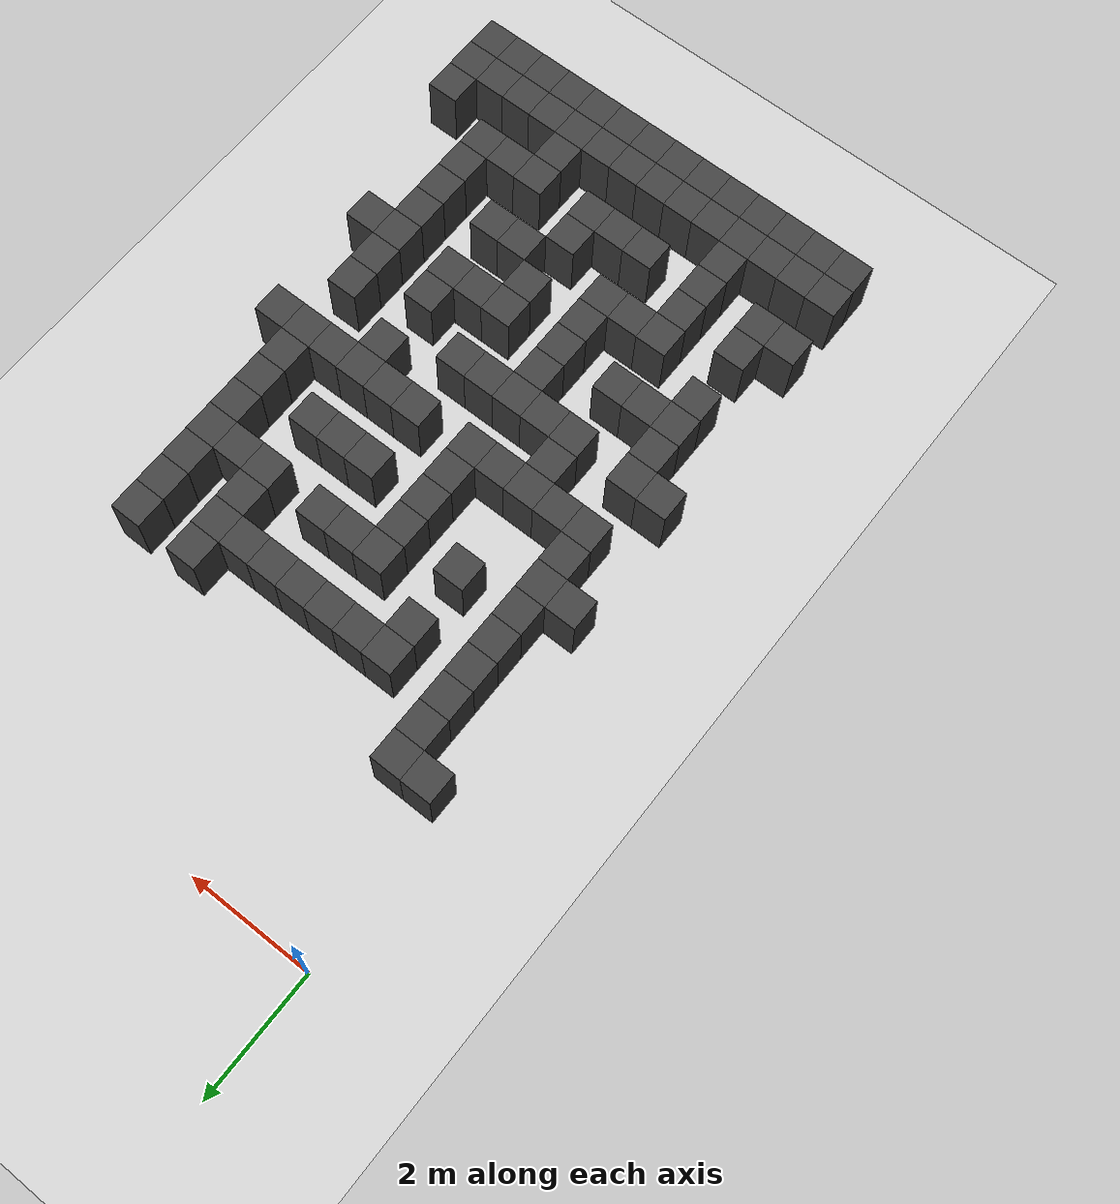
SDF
<sdf version="1.7">
 <world name="map_17508">
  <model name="ground_plane">
   <static>true</static>
   <link name="link">
    <collision name="collision">
     <geometry><plane><normal>0 0 1</normal><size>200 200</size></plane></geometry>
    </collision>
    <visual name="visual">
     <geometry><plane><normal>0 0 1</normal><size>200 200</size></plane></geometry>
     <material><ambient>0.8 0.8 0.8 1</ambient><diffuse>0.8 0.8 0.8 1</diffuse></material>
    </visual>
   </link>
  </model>
  <model name="maze_environment">
   <static>true</static>
   <link name="wall_756">
    <pose>0.250 -2.750 0.500 0 0 0</pose>
    <collision name="col"><geometry><box><size>0.5 0.5 1.0</size></box></geometry></collision>
    <visual name="vis">
     <geometry><box><size>0.5 0.5 1.0</size></box></geometry>
     <material><ambient>0.15 0.15 0.15 1</ambient><diffuse>0.25 0.25 0.25 1</diffuse></material>
    </visual>
   </link>
   <link name="wall_757">
    <pose>0.750 -2.750 0.500 0 0 0</pose>
    <collision name="col"><geometry><box><size>0.5 0.5 1.0</size></box></geometry></collision>
    <visual name="vis">
     <geometry><box><size>0.5 0.5 1.0</size></box></geometry>
     <material><ambient>0.15 0.15 0.15 1</ambient><diffuse>0.25 0.25 0.25 1</diffuse></material>
    </visual>
   </link>
   <link name="wall_778">
    <pose>0.750 -3.250 0.500 0 0 0</pose>
    <collision name="col"><geometry><box><size>0.5 0.5 1.0</size></box></geometry></collision>
    <visual name="vis">
     <geometry><box><size>0.5 0.5 1.0</size></box></geometry>
     <material><ambient>0.15 0.15 0.15 1</ambient><diffuse>0.25 0.25 0.25 1</diffuse></material>
    </visual>
   </link>
   <link name="wall_779">
    <pose>4.750 -3.250 0.500 0 0 0</pose>
    <collision name="col"><geometry><box><size>0.5 0.5 1.0</size></box></geometry></collision>
    <visual name="vis">
     <geometry><box><size>0.5 0.5 1.0</size></box></geometry>
     <material><ambient>0.15 0.15 0.15 1</ambient><diffuse>0.25 0.25 0.25 1</diffuse></material>
    </visual>
   </link>
   <link name="wall_780">
    <pose>5.750 -3.250 0.500 0 0 0</pose>
    <collision name="col"><geometry><box><size>0.5 0.5 1.0</size></box></geometry></collision>
    <visual name="vis">
     <geometry><box><size>0.5 0.5 1.0</size></box></geometry>
     <material><ambient>0.15 0.15 0.15 1</ambient><diffuse>0.25 0.25 0.25 1</diffuse></material>
    </visual>
   </link>
   <link name="wall_800">
    <pose>0.750 -3.750 0.500 0 0 0</pose>
    <collision name="col"><geometry><box><size>0.5 0.5 1.0</size></box></geometry></collision>
    <visual name="vis">
     <geometry><box><size>0.5 0.5 1.0</size></box></geometry>
     <material><ambient>0.15 0.15 0.15 1</ambient><diffuse>0.25 0.25 0.25 1</diffuse></material>
    </visual>
   </link>
   <link name="wall_801">
    <pose>1.750 -3.750 0.500 0 0 0</pose>
    <collision name="col"><geometry><box><size>0.5 0.5 1.0</size></box></geometry></collision>
    <visual name="vis">
     <geometry><box><size>0.5 0.5 1.0</size></box></geometry>
     <material><ambient>0.15 0.15 0.15 1</ambient><diffuse>0.25 0.25 0.25 1</diffuse></material>
    </visual>
   </link>
   <link name="wall_802">
    <pose>2.250 -3.750 0.500 0 0 0</pose>
    <collision name="col"><geometry><box><size>0.5 0.5 1.0</size></box></geometry></collision>
    <visual name="vis">
     <geometry><box><size>0.5 0.5 1.0</size></box></geometry>
     <material><ambient>0.15 0.15 0.15 1</ambient><diffuse>0.25 0.25 0.25 1</diffuse></material>
    </visual>
   </link>
   <link name="wall_803">
    <pose>2.750 -3.750 0.500 0 0 0</pose>
    <collision name="col"><geometry><box><size>0.5 0.5 1.0</size></box></geometry></collision>
    <visual name="vis">
     <geometry><box><size>0.5 0.5 1.0</size></box></geometry>
     <material><ambient>0.15 0.15 0.15 1</ambient><diffuse>0.25 0.25 0.25 1</diffuse></material>
    </visual>
   </link>
   <link name="wall_804">
    <pose>3.250 -3.750 0.500 0 0 0</pose>
    <collision name="col"><geometry><box><size>0.5 0.5 1.0</size></box></geometry></collision>
    <visual name="vis">
     <geometry><box><size>0.5 0.5 1.0</size></box></geometry>
     <material><ambient>0.15 0.15 0.15 1</ambient><diffuse>0.25 0.25 0.25 1</diffuse></material>
    </visual>
   </link>
   <link name="wall_805">
    <pose>3.750 -3.750 0.500 0 0 0</pose>
    <collision name="col"><geometry><box><size>0.5 0.5 1.0</size></box></geometry></collision>
    <visual name="vis">
     <geometry><box><size>0.5 0.5 1.0</size></box></geometry>
     <material><ambient>0.15 0.15 0.15 1</ambient><diffuse>0.25 0.25 0.25 1</diffuse></material>
    </visual>
   </link>
   <link name="wall_806">
    <pose>4.250 -3.750 0.500 0 0 0</pose>
    <collision name="col"><geometry><box><size>0.5 0.5 1.0</size></box></geometry></collision>
    <visual name="vis">
     <geometry><box><size>0.5 0.5 1.0</size></box></geometry>
     <material><ambient>0.15 0.15 0.15 1</ambient><diffuse>0.25 0.25 0.25 1</diffuse></material>
    </visual>
   </link>
   <link name="wall_807">
    <pose>4.750 -3.750 0.500 0 0 0</pose>
    <collision name="col"><geometry><box><size>0.5 0.5 1.0</size></box></geometry></collision>
    <visual name="vis">
     <geometry><box><size>0.5 0.5 1.0</size></box></geometry>
     <material><ambient>0.15 0.15 0.15 1</ambient><diffuse>0.25 0.25 0.25 1</diffuse></material>
    </visual>
   </link>
   <link name="wall_808">
    <pose>5.750 -3.750 0.500 0 0 0</pose>
    <collision name="col"><geometry><box><size>0.5 0.5 1.0</size></box></geometry></collision>
    <visual name="vis">
     <geometry><box><size>0.5 0.5 1.0</size></box></geometry>
     <material><ambient>0.15 0.15 0.15 1</ambient><diffuse>0.25 0.25 0.25 1</diffuse></material>
    </visual>
   </link>
   <link name="wall_824">
    <pose>0.750 -4.250 0.500 0 0 0</pose>
    <collision name="col"><geometry><box><size>0.5 0.5 1.0</size></box></geometry></collision>
    <visual name="vis">
     <geometry><box><size>0.5 0.5 1.0</size></box></geometry>
     <material><ambient>0.15 0.15 0.15 1</ambient><diffuse>0.25 0.25 0.25 1</diffuse></material>
    </visual>
   </link>
   <link name="wall_825">
    <pose>1.750 -4.250 0.500 0 0 0</pose>
    <collision name="col"><geometry><box><size>0.5 0.5 1.0</size></box></geometry></collision>
    <visual name="vis">
     <geometry><box><size>0.5 0.5 1.0</size></box></geometry>
     <material><ambient>0.15 0.15 0.15 1</ambient><diffuse>0.25 0.25 0.25 1</diffuse></material>
    </visual>
   </link>
   <link name="wall_826">
    <pose>4.750 -4.250 0.500 0 0 0</pose>
    <collision name="col"><geometry><box><size>0.5 0.5 1.0</size></box></geometry></collision>
    <visual name="vis">
     <geometry><box><size>0.5 0.5 1.0</size></box></geometry>
     <material><ambient>0.15 0.15 0.15 1</ambient><diffuse>0.25 0.25 0.25 1</diffuse></material>
    </visual>
   </link>
   <link name="wall_827">
    <pose>5.750 -4.250 0.500 0 0 0</pose>
    <collision name="col"><geometry><box><size>0.5 0.5 1.0</size></box></geometry></collision>
    <visual name="vis">
     <geometry><box><size>0.5 0.5 1.0</size></box></geometry>
     <material><ambient>0.15 0.15 0.15 1</ambient><diffuse>0.25 0.25 0.25 1</diffuse></material>
    </visual>
   </link>
   <link name="wall_853">
    <pose>0.750 -4.750 0.500 0 0 0</pose>
    <collision name="col"><geometry><box><size>0.5 0.5 1.0</size></box></geometry></collision>
    <visual name="vis">
     <geometry><box><size>0.5 0.5 1.0</size></box></geometry>
     <material><ambient>0.15 0.15 0.15 1</ambient><diffuse>0.25 0.25 0.25 1</diffuse></material>
    </visual>
   </link>
   <link name="wall_854">
    <pose>2.750 -4.750 0.500 0 0 0</pose>
    <collision name="col"><geometry><box><size>0.5 0.5 1.0</size></box></geometry></collision>
    <visual name="vis">
     <geometry><box><size>0.5 0.5 1.0</size></box></geometry>
     <material><ambient>0.15 0.15 0.15 1</ambient><diffuse>0.25 0.25 0.25 1</diffuse></material>
    </visual>
   </link>
   <link name="wall_855">
    <pose>3.250 -4.750 0.500 0 0 0</pose>
    <collision name="col"><geometry><box><size>0.5 0.5 1.0</size></box></geometry></collision>
    <visual name="vis">
     <geometry><box><size>0.5 0.5 1.0</size></box></geometry>
     <material><ambient>0.15 0.15 0.15 1</ambient><diffuse>0.25 0.25 0.25 1</diffuse></material>
    </visual>
   </link>
   <link name="wall_856">
    <pose>3.750 -4.750 0.500 0 0 0</pose>
    <collision name="col"><geometry><box><size>0.5 0.5 1.0</size></box></geometry></collision>
    <visual name="vis">
     <geometry><box><size>0.5 0.5 1.0</size></box></geometry>
     <material><ambient>0.15 0.15 0.15 1</ambient><diffuse>0.25 0.25 0.25 1</diffuse></material>
    </visual>
   </link>
   <link name="wall_857">
    <pose>4.750 -4.750 0.500 0 0 0</pose>
    <collision name="col"><geometry><box><size>0.5 0.5 1.0</size></box></geometry></collision>
    <visual name="vis">
     <geometry><box><size>0.5 0.5 1.0</size></box></geometry>
     <material><ambient>0.15 0.15 0.15 1</ambient><diffuse>0.25 0.25 0.25 1</diffuse></material>
    </visual>
   </link>
   <link name="wall_858">
    <pose>5.250 -4.750 0.500 0 0 0</pose>
    <collision name="col"><geometry><box><size>0.5 0.5 1.0</size></box></geometry></collision>
    <visual name="vis">
     <geometry><box><size>0.5 0.5 1.0</size></box></geometry>
     <material><ambient>0.15 0.15 0.15 1</ambient><diffuse>0.25 0.25 0.25 1</diffuse></material>
    </visual>
   </link>
   <link name="wall_859">
    <pose>5.750 -4.750 0.500 0 0 0</pose>
    <collision name="col"><geometry><box><size>0.5 0.5 1.0</size></box></geometry></collision>
    <visual name="vis">
     <geometry><box><size>0.5 0.5 1.0</size></box></geometry>
     <material><ambient>0.15 0.15 0.15 1</ambient><diffuse>0.25 0.25 0.25 1</diffuse></material>
    </visual>
   </link>
   <link name="wall_874">
    <pose>0.750 -5.250 0.500 0 0 0</pose>
    <collision name="col"><geometry><box><size>0.5 0.5 1.0</size></box></geometry></collision>
    <visual name="vis">
     <geometry><box><size>0.5 0.5 1.0</size></box></geometry>
     <material><ambient>0.15 0.15 0.15 1</ambient><diffuse>0.25 0.25 0.25 1</diffuse></material>
    </visual>
   </link>
   <link name="wall_875">
    <pose>1.750 -5.250 0.500 0 0 0</pose>
    <collision name="col"><geometry><box><size>0.5 0.5 1.0</size></box></geometry></collision>
    <visual name="vis">
     <geometry><box><size>0.5 0.5 1.0</size></box></geometry>
     <material><ambient>0.15 0.15 0.15 1</ambient><diffuse>0.25 0.25 0.25 1</diffuse></material>
    </visual>
   </link>
   <link name="wall_876">
    <pose>2.750 -5.250 0.500 0 0 0</pose>
    <collision name="col"><geometry><box><size>0.5 0.5 1.0</size></box></geometry></collision>
    <visual name="vis">
     <geometry><box><size>0.5 0.5 1.0</size></box></geometry>
     <material><ambient>0.15 0.15 0.15 1</ambient><diffuse>0.25 0.25 0.25 1</diffuse></material>
    </visual>
   </link>
   <link name="wall_877">
    <pose>5.750 -5.250 0.500 0 0 0</pose>
    <collision name="col"><geometry><box><size>0.5 0.5 1.0</size></box></geometry></collision>
    <visual name="vis">
     <geometry><box><size>0.5 0.5 1.0</size></box></geometry>
     <material><ambient>0.15 0.15 0.15 1</ambient><diffuse>0.25 0.25 0.25 1</diffuse></material>
    </visual>
   </link>
   <link name="wall_902">
    <pose>0.250 -5.750 0.500 0 0 0</pose>
    <collision name="col"><geometry><box><size>0.5 0.5 1.0</size></box></geometry></collision>
    <visual name="vis">
     <geometry><box><size>0.5 0.5 1.0</size></box></geometry>
     <material><ambient>0.15 0.15 0.15 1</ambient><diffuse>0.25 0.25 0.25 1</diffuse></material>
    </visual>
   </link>
   <link name="wall_903">
    <pose>0.750 -5.750 0.500 0 0 0</pose>
    <collision name="col"><geometry><box><size>0.5 0.5 1.0</size></box></geometry></collision>
    <visual name="vis">
     <geometry><box><size>0.5 0.5 1.0</size></box></geometry>
     <material><ambient>0.15 0.15 0.15 1</ambient><diffuse>0.25 0.25 0.25 1</diffuse></material>
    </visual>
   </link>
   <link name="wall_904">
    <pose>2.750 -5.750 0.500 0 0 0</pose>
    <collision name="col"><geometry><box><size>0.5 0.5 1.0</size></box></geometry></collision>
    <visual name="vis">
     <geometry><box><size>0.5 0.5 1.0</size></box></geometry>
     <material><ambient>0.15 0.15 0.15 1</ambient><diffuse>0.25 0.25 0.25 1</diffuse></material>
    </visual>
   </link>
   <link name="wall_905">
    <pose>3.750 -5.750 0.500 0 0 0</pose>
    <collision name="col"><geometry><box><size>0.5 0.5 1.0</size></box></geometry></collision>
    <visual name="vis">
     <geometry><box><size>0.5 0.5 1.0</size></box></geometry>
     <material><ambient>0.15 0.15 0.15 1</ambient><diffuse>0.25 0.25 0.25 1</diffuse></material>
    </visual>
   </link>
   <link name="wall_906">
    <pose>4.250 -5.750 0.500 0 0 0</pose>
    <collision name="col"><geometry><box><size>0.5 0.5 1.0</size></box></geometry></collision>
    <visual name="vis">
     <geometry><box><size>0.5 0.5 1.0</size></box></geometry>
     <material><ambient>0.15 0.15 0.15 1</ambient><diffuse>0.25 0.25 0.25 1</diffuse></material>
    </visual>
   </link>
   <link name="wall_907">
    <pose>4.750 -5.750 0.500 0 0 0</pose>
    <collision name="col"><geometry><box><size>0.5 0.5 1.0</size></box></geometry></collision>
    <visual name="vis">
     <geometry><box><size>0.5 0.5 1.0</size></box></geometry>
     <material><ambient>0.15 0.15 0.15 1</ambient><diffuse>0.25 0.25 0.25 1</diffuse></material>
    </visual>
   </link>
   <link name="wall_908">
    <pose>5.750 -5.750 0.500 0 0 0</pose>
    <collision name="col"><geometry><box><size>0.5 0.5 1.0</size></box></geometry></collision>
    <visual name="vis">
     <geometry><box><size>0.5 0.5 1.0</size></box></geometry>
     <material><ambient>0.15 0.15 0.15 1</ambient><diffuse>0.25 0.25 0.25 1</diffuse></material>
    </visual>
   </link>
   <link name="wall_925">
    <pose>0.750 -6.250 0.500 0 0 0</pose>
    <collision name="col"><geometry><box><size>0.5 0.5 1.0</size></box></geometry></collision>
    <visual name="vis">
     <geometry><box><size>0.5 0.5 1.0</size></box></geometry>
     <material><ambient>0.15 0.15 0.15 1</ambient><diffuse>0.25 0.25 0.25 1</diffuse></material>
    </visual>
   </link>
   <link name="wall_926">
    <pose>2.750 -6.250 0.500 0 0 0</pose>
    <collision name="col"><geometry><box><size>0.5 0.5 1.0</size></box></geometry></collision>
    <visual name="vis">
     <geometry><box><size>0.5 0.5 1.0</size></box></geometry>
     <material><ambient>0.15 0.15 0.15 1</ambient><diffuse>0.25 0.25 0.25 1</diffuse></material>
    </visual>
   </link>
   <link name="wall_927">
    <pose>5.750 -6.250 0.500 0 0 0</pose>
    <collision name="col"><geometry><box><size>0.5 0.5 1.0</size></box></geometry></collision>
    <visual name="vis">
     <geometry><box><size>0.5 0.5 1.0</size></box></geometry>
     <material><ambient>0.15 0.15 0.15 1</ambient><diffuse>0.25 0.25 0.25 1</diffuse></material>
    </visual>
   </link>
   <link name="wall_946">
    <pose>0.750 -6.750 0.500 0 0 0</pose>
    <collision name="col"><geometry><box><size>0.5 0.5 1.0</size></box></geometry></collision>
    <visual name="vis">
     <geometry><box><size>0.5 0.5 1.0</size></box></geometry>
     <material><ambient>0.15 0.15 0.15 1</ambient><diffuse>0.25 0.25 0.25 1</diffuse></material>
    </visual>
   </link>
   <link name="wall_947">
    <pose>1.250 -6.750 0.500 0 0 0</pose>
    <collision name="col"><geometry><box><size>0.5 0.5 1.0</size></box></geometry></collision>
    <visual name="vis">
     <geometry><box><size>0.5 0.5 1.0</size></box></geometry>
     <material><ambient>0.15 0.15 0.15 1</ambient><diffuse>0.25 0.25 0.25 1</diffuse></material>
    </visual>
   </link>
   <link name="wall_948">
    <pose>1.750 -6.750 0.500 0 0 0</pose>
    <collision name="col"><geometry><box><size>0.5 0.5 1.0</size></box></geometry></collision>
    <visual name="vis">
     <geometry><box><size>0.5 0.5 1.0</size></box></geometry>
     <material><ambient>0.15 0.15 0.15 1</ambient><diffuse>0.25 0.25 0.25 1</diffuse></material>
    </visual>
   </link>
   <link name="wall_949">
    <pose>2.250 -6.750 0.500 0 0 0</pose>
    <collision name="col"><geometry><box><size>0.5 0.5 1.0</size></box></geometry></collision>
    <visual name="vis">
     <geometry><box><size>0.5 0.5 1.0</size></box></geometry>
     <material><ambient>0.15 0.15 0.15 1</ambient><diffuse>0.25 0.25 0.25 1</diffuse></material>
    </visual>
   </link>
   <link name="wall_950">
    <pose>2.750 -6.750 0.500 0 0 0</pose>
    <collision name="col"><geometry><box><size>0.5 0.5 1.0</size></box></geometry></collision>
    <visual name="vis">
     <geometry><box><size>0.5 0.5 1.0</size></box></geometry>
     <material><ambient>0.15 0.15 0.15 1</ambient><diffuse>0.25 0.25 0.25 1</diffuse></material>
    </visual>
   </link>
   <link name="wall_951">
    <pose>3.750 -6.750 0.500 0 0 0</pose>
    <collision name="col"><geometry><box><size>0.5 0.5 1.0</size></box></geometry></collision>
    <visual name="vis">
     <geometry><box><size>0.5 0.5 1.0</size></box></geometry>
     <material><ambient>0.15 0.15 0.15 1</ambient><diffuse>0.25 0.25 0.25 1</diffuse></material>
    </visual>
   </link>
   <link name="wall_952">
    <pose>4.250 -6.750 0.500 0 0 0</pose>
    <collision name="col"><geometry><box><size>0.5 0.5 1.0</size></box></geometry></collision>
    <visual name="vis">
     <geometry><box><size>0.5 0.5 1.0</size></box></geometry>
     <material><ambient>0.15 0.15 0.15 1</ambient><diffuse>0.25 0.25 0.25 1</diffuse></material>
    </visual>
   </link>
   <link name="wall_953">
    <pose>4.750 -6.750 0.500 0 0 0</pose>
    <collision name="col"><geometry><box><size>0.5 0.5 1.0</size></box></geometry></collision>
    <visual name="vis">
     <geometry><box><size>0.5 0.5 1.0</size></box></geometry>
     <material><ambient>0.15 0.15 0.15 1</ambient><diffuse>0.25 0.25 0.25 1</diffuse></material>
    </visual>
   </link>
   <link name="wall_954">
    <pose>5.250 -6.750 0.500 0 0 0</pose>
    <collision name="col"><geometry><box><size>0.5 0.5 1.0</size></box></geometry></collision>
    <visual name="vis">
     <geometry><box><size>0.5 0.5 1.0</size></box></geometry>
     <material><ambient>0.15 0.15 0.15 1</ambient><diffuse>0.25 0.25 0.25 1</diffuse></material>
    </visual>
   </link>
   <link name="wall_955">
    <pose>5.750 -6.750 0.500 0 0 0</pose>
    <collision name="col"><geometry><box><size>0.5 0.5 1.0</size></box></geometry></collision>
    <visual name="vis">
     <geometry><box><size>0.5 0.5 1.0</size></box></geometry>
     <material><ambient>0.15 0.15 0.15 1</ambient><diffuse>0.25 0.25 0.25 1</diffuse></material>
    </visual>
   </link>
   <link name="wall_956">
    <pose>6.250 -6.750 0.500 0 0 0</pose>
    <collision name="col"><geometry><box><size>0.5 0.5 1.0</size></box></geometry></collision>
    <visual name="vis">
     <geometry><box><size>0.5 0.5 1.0</size></box></geometry>
     <material><ambient>0.15 0.15 0.15 1</ambient><diffuse>0.25 0.25 0.25 1</diffuse></material>
    </visual>
   </link>
   <link name="wall_974">
    <pose>1.750 -7.250 0.500 0 0 0</pose>
    <collision name="col"><geometry><box><size>0.5 0.5 1.0</size></box></geometry></collision>
    <visual name="vis">
     <geometry><box><size>0.5 0.5 1.0</size></box></geometry>
     <material><ambient>0.15 0.15 0.15 1</ambient><diffuse>0.25 0.25 0.25 1</diffuse></material>
    </visual>
   </link>
   <link name="wall_975">
    <pose>4.750 -7.250 0.500 0 0 0</pose>
    <collision name="col"><geometry><box><size>0.5 0.5 1.0</size></box></geometry></collision>
    <visual name="vis">
     <geometry><box><size>0.5 0.5 1.0</size></box></geometry>
     <material><ambient>0.15 0.15 0.15 1</ambient><diffuse>0.25 0.25 0.25 1</diffuse></material>
    </visual>
   </link>
   <link name="wall_999">
    <pose>0.250 -7.750 0.500 0 0 0</pose>
    <collision name="col"><geometry><box><size>0.5 0.5 1.0</size></box></geometry></collision>
    <visual name="vis">
     <geometry><box><size>0.5 0.5 1.0</size></box></geometry>
     <material><ambient>0.15 0.15 0.15 1</ambient><diffuse>0.25 0.25 0.25 1</diffuse></material>
    </visual>
   </link>
   <link name="wall_1000">
    <pose>0.750 -7.750 0.500 0 0 0</pose>
    <collision name="col"><geometry><box><size>0.5 0.5 1.0</size></box></geometry></collision>
    <visual name="vis">
     <geometry><box><size>0.5 0.5 1.0</size></box></geometry>
     <material><ambient>0.15 0.15 0.15 1</ambient><diffuse>0.25 0.25 0.25 1</diffuse></material>
    </visual>
   </link>
   <link name="wall_1001">
    <pose>1.750 -7.750 0.500 0 0 0</pose>
    <collision name="col"><geometry><box><size>0.5 0.5 1.0</size></box></geometry></collision>
    <visual name="vis">
     <geometry><box><size>0.5 0.5 1.0</size></box></geometry>
     <material><ambient>0.15 0.15 0.15 1</ambient><diffuse>0.25 0.25 0.25 1</diffuse></material>
    </visual>
   </link>
   <link name="wall_1002">
    <pose>2.250 -7.750 0.500 0 0 0</pose>
    <collision name="col"><geometry><box><size>0.5 0.5 1.0</size></box></geometry></collision>
    <visual name="vis">
     <geometry><box><size>0.5 0.5 1.0</size></box></geometry>
     <material><ambient>0.15 0.15 0.15 1</ambient><diffuse>0.25 0.25 0.25 1</diffuse></material>
    </visual>
   </link>
   <link name="wall_1003">
    <pose>2.750 -7.750 0.500 0 0 0</pose>
    <collision name="col"><geometry><box><size>0.5 0.5 1.0</size></box></geometry></collision>
    <visual name="vis">
     <geometry><box><size>0.5 0.5 1.0</size></box></geometry>
     <material><ambient>0.15 0.15 0.15 1</ambient><diffuse>0.25 0.25 0.25 1</diffuse></material>
    </visual>
   </link>
   <link name="wall_1004">
    <pose>3.250 -7.750 0.500 0 0 0</pose>
    <collision name="col"><geometry><box><size>0.5 0.5 1.0</size></box></geometry></collision>
    <visual name="vis">
     <geometry><box><size>0.5 0.5 1.0</size></box></geometry>
     <material><ambient>0.15 0.15 0.15 1</ambient><diffuse>0.25 0.25 0.25 1</diffuse></material>
    </visual>
   </link>
   <link name="wall_1005">
    <pose>3.750 -7.750 0.500 0 0 0</pose>
    <collision name="col"><geometry><box><size>0.5 0.5 1.0</size></box></geometry></collision>
    <visual name="vis">
     <geometry><box><size>0.5 0.5 1.0</size></box></geometry>
     <material><ambient>0.15 0.15 0.15 1</ambient><diffuse>0.25 0.25 0.25 1</diffuse></material>
    </visual>
   </link>
   <link name="wall_1006">
    <pose>5.750 -7.750 0.500 0 0 0</pose>
    <collision name="col"><geometry><box><size>0.5 0.5 1.0</size></box></geometry></collision>
    <visual name="vis">
     <geometry><box><size>0.5 0.5 1.0</size></box></geometry>
     <material><ambient>0.15 0.15 0.15 1</ambient><diffuse>0.25 0.25 0.25 1</diffuse></material>
    </visual>
   </link>
   <link name="wall_1022">
    <pose>0.750 -8.250 0.500 0 0 0</pose>
    <collision name="col"><geometry><box><size>0.5 0.5 1.0</size></box></geometry></collision>
    <visual name="vis">
     <geometry><box><size>0.5 0.5 1.0</size></box></geometry>
     <material><ambient>0.15 0.15 0.15 1</ambient><diffuse>0.25 0.25 0.25 1</diffuse></material>
    </visual>
   </link>
   <link name="wall_1023">
    <pose>2.750 -8.250 0.500 0 0 0</pose>
    <collision name="col"><geometry><box><size>0.5 0.5 1.0</size></box></geometry></collision>
    <visual name="vis">
     <geometry><box><size>0.5 0.5 1.0</size></box></geometry>
     <material><ambient>0.15 0.15 0.15 1</ambient><diffuse>0.25 0.25 0.25 1</diffuse></material>
    </visual>
   </link>
   <link name="wall_1024">
    <pose>4.750 -8.250 0.500 0 0 0</pose>
    <collision name="col"><geometry><box><size>0.5 0.5 1.0</size></box></geometry></collision>
    <visual name="vis">
     <geometry><box><size>0.5 0.5 1.0</size></box></geometry>
     <material><ambient>0.15 0.15 0.15 1</ambient><diffuse>0.25 0.25 0.25 1</diffuse></material>
    </visual>
   </link>
   <link name="wall_1025">
    <pose>5.750 -8.250 0.500 0 0 0</pose>
    <collision name="col"><geometry><box><size>0.5 0.5 1.0</size></box></geometry></collision>
    <visual name="vis">
     <geometry><box><size>0.5 0.5 1.0</size></box></geometry>
     <material><ambient>0.15 0.15 0.15 1</ambient><diffuse>0.25 0.25 0.25 1</diffuse></material>
    </visual>
   </link>
   <link name="wall_1048">
    <pose>0.750 -8.750 0.500 0 0 0</pose>
    <collision name="col"><geometry><box><size>0.5 0.5 1.0</size></box></geometry></collision>
    <visual name="vis">
     <geometry><box><size>0.5 0.5 1.0</size></box></geometry>
     <material><ambient>0.15 0.15 0.15 1</ambient><diffuse>0.25 0.25 0.25 1</diffuse></material>
    </visual>
   </link>
   <link name="wall_1049">
    <pose>1.250 -8.750 0.500 0 0 0</pose>
    <collision name="col"><geometry><box><size>0.5 0.5 1.0</size></box></geometry></collision>
    <visual name="vis">
     <geometry><box><size>0.5 0.5 1.0</size></box></geometry>
     <material><ambient>0.15 0.15 0.15 1</ambient><diffuse>0.25 0.25 0.25 1</diffuse></material>
    </visual>
   </link>
   <link name="wall_1050">
    <pose>1.750 -8.750 0.500 0 0 0</pose>
    <collision name="col"><geometry><box><size>0.5 0.5 1.0</size></box></geometry></collision>
    <visual name="vis">
     <geometry><box><size>0.5 0.5 1.0</size></box></geometry>
     <material><ambient>0.15 0.15 0.15 1</ambient><diffuse>0.25 0.25 0.25 1</diffuse></material>
    </visual>
   </link>
   <link name="wall_1051">
    <pose>2.750 -8.750 0.500 0 0 0</pose>
    <collision name="col"><geometry><box><size>0.5 0.5 1.0</size></box></geometry></collision>
    <visual name="vis">
     <geometry><box><size>0.5 0.5 1.0</size></box></geometry>
     <material><ambient>0.15 0.15 0.15 1</ambient><diffuse>0.25 0.25 0.25 1</diffuse></material>
    </visual>
   </link>
   <link name="wall_1052">
    <pose>3.750 -8.750 0.500 0 0 0</pose>
    <collision name="col"><geometry><box><size>0.5 0.5 1.0</size></box></geometry></collision>
    <visual name="vis">
     <geometry><box><size>0.5 0.5 1.0</size></box></geometry>
     <material><ambient>0.15 0.15 0.15 1</ambient><diffuse>0.25 0.25 0.25 1</diffuse></material>
    </visual>
   </link>
   <link name="wall_1053">
    <pose>4.250 -8.750 0.500 0 0 0</pose>
    <collision name="col"><geometry><box><size>0.5 0.5 1.0</size></box></geometry></collision>
    <visual name="vis">
     <geometry><box><size>0.5 0.5 1.0</size></box></geometry>
     <material><ambient>0.15 0.15 0.15 1</ambient><diffuse>0.25 0.25 0.25 1</diffuse></material>
    </visual>
   </link>
   <link name="wall_1054">
    <pose>4.750 -8.750 0.500 0 0 0</pose>
    <collision name="col"><geometry><box><size>0.5 0.5 1.0</size></box></geometry></collision>
    <visual name="vis">
     <geometry><box><size>0.5 0.5 1.0</size></box></geometry>
     <material><ambient>0.15 0.15 0.15 1</ambient><diffuse>0.25 0.25 0.25 1</diffuse></material>
    </visual>
   </link>
   <link name="wall_1055">
    <pose>5.750 -8.750 0.500 0 0 0</pose>
    <collision name="col"><geometry><box><size>0.5 0.5 1.0</size></box></geometry></collision>
    <visual name="vis">
     <geometry><box><size>0.5 0.5 1.0</size></box></geometry>
     <material><ambient>0.15 0.15 0.15 1</ambient><diffuse>0.25 0.25 0.25 1</diffuse></material>
    </visual>
   </link>
   <link name="wall_1056">
    <pose>6.250 -8.750 0.500 0 0 0</pose>
    <collision name="col"><geometry><box><size>0.5 0.5 1.0</size></box></geometry></collision>
    <visual name="vis">
     <geometry><box><size>0.5 0.5 1.0</size></box></geometry>
     <material><ambient>0.15 0.15 0.15 1</ambient><diffuse>0.25 0.25 0.25 1</diffuse></material>
    </visual>
   </link>
   <link name="wall_1071">
    <pose>0.750 -9.250 0.500 0 0 0</pose>
    <collision name="col"><geometry><box><size>0.5 0.5 1.0</size></box></geometry></collision>
    <visual name="vis">
     <geometry><box><size>0.5 0.5 1.0</size></box></geometry>
     <material><ambient>0.15 0.15 0.15 1</ambient><diffuse>0.25 0.25 0.25 1</diffuse></material>
    </visual>
   </link>
   <link name="wall_1072">
    <pose>2.750 -9.250 0.500 0 0 0</pose>
    <collision name="col"><geometry><box><size>0.5 0.5 1.0</size></box></geometry></collision>
    <visual name="vis">
     <geometry><box><size>0.5 0.5 1.0</size></box></geometry>
     <material><ambient>0.15 0.15 0.15 1</ambient><diffuse>0.25 0.25 0.25 1</diffuse></material>
    </visual>
   </link>
   <link name="wall_1073">
    <pose>3.750 -9.250 0.500 0 0 0</pose>
    <collision name="col"><geometry><box><size>0.5 0.5 1.0</size></box></geometry></collision>
    <visual name="vis">
     <geometry><box><size>0.5 0.5 1.0</size></box></geometry>
     <material><ambient>0.15 0.15 0.15 1</ambient><diffuse>0.25 0.25 0.25 1</diffuse></material>
    </visual>
   </link>
   <link name="wall_1074">
    <pose>5.750 -9.250 0.500 0 0 0</pose>
    <collision name="col"><geometry><box><size>0.5 0.5 1.0</size></box></geometry></collision>
    <visual name="vis">
     <geometry><box><size>0.5 0.5 1.0</size></box></geometry>
     <material><ambient>0.15 0.15 0.15 1</ambient><diffuse>0.25 0.25 0.25 1</diffuse></material>
    </visual>
   </link>
   <link name="wall_1099">
    <pose>1.750 -9.750 0.500 0 0 0</pose>
    <collision name="col"><geometry><box><size>0.5 0.5 1.0</size></box></geometry></collision>
    <visual name="vis">
     <geometry><box><size>0.5 0.5 1.0</size></box></geometry>
     <material><ambient>0.15 0.15 0.15 1</ambient><diffuse>0.25 0.25 0.25 1</diffuse></material>
    </visual>
   </link>
   <link name="wall_1100">
    <pose>2.250 -9.750 0.500 0 0 0</pose>
    <collision name="col"><geometry><box><size>0.5 0.5 1.0</size></box></geometry></collision>
    <visual name="vis">
     <geometry><box><size>0.5 0.5 1.0</size></box></geometry>
     <material><ambient>0.15 0.15 0.15 1</ambient><diffuse>0.25 0.25 0.25 1</diffuse></material>
    </visual>
   </link>
   <link name="wall_1101">
    <pose>2.750 -9.750 0.500 0 0 0</pose>
    <collision name="col"><geometry><box><size>0.5 0.5 1.0</size></box></geometry></collision>
    <visual name="vis">
     <geometry><box><size>0.5 0.5 1.0</size></box></geometry>
     <material><ambient>0.15 0.15 0.15 1</ambient><diffuse>0.25 0.25 0.25 1</diffuse></material>
    </visual>
   </link>
   <link name="wall_1102">
    <pose>4.250 -9.750 0.500 0 0 0</pose>
    <collision name="col"><geometry><box><size>0.5 0.5 1.0</size></box></geometry></collision>
    <visual name="vis">
     <geometry><box><size>0.5 0.5 1.0</size></box></geometry>
     <material><ambient>0.15 0.15 0.15 1</ambient><diffuse>0.25 0.25 0.25 1</diffuse></material>
    </visual>
   </link>
   <link name="wall_1103">
    <pose>4.750 -9.750 0.500 0 0 0</pose>
    <collision name="col"><geometry><box><size>0.5 0.5 1.0</size></box></geometry></collision>
    <visual name="vis">
     <geometry><box><size>0.5 0.5 1.0</size></box></geometry>
     <material><ambient>0.15 0.15 0.15 1</ambient><diffuse>0.25 0.25 0.25 1</diffuse></material>
    </visual>
   </link>
   <link name="wall_1104">
    <pose>5.750 -9.750 0.500 0 0 0</pose>
    <collision name="col"><geometry><box><size>0.5 0.5 1.0</size></box></geometry></collision>
    <visual name="vis">
     <geometry><box><size>0.5 0.5 1.0</size></box></geometry>
     <material><ambient>0.15 0.15 0.15 1</ambient><diffuse>0.25 0.25 0.25 1</diffuse></material>
    </visual>
   </link>
   <link name="wall_1120">
    <pose>0.750 -10.250 0.500 0 0 0</pose>
    <collision name="col"><geometry><box><size>0.5 0.5 1.0</size></box></geometry></collision>
    <visual name="vis">
     <geometry><box><size>0.5 0.5 1.0</size></box></geometry>
     <material><ambient>0.15 0.15 0.15 1</ambient><diffuse>0.25 0.25 0.25 1</diffuse></material>
    </visual>
   </link>
   <link name="wall_1121">
    <pose>1.750 -10.250 0.500 0 0 0</pose>
    <collision name="col"><geometry><box><size>0.5 0.5 1.0</size></box></geometry></collision>
    <visual name="vis">
     <geometry><box><size>0.5 0.5 1.0</size></box></geometry>
     <material><ambient>0.15 0.15 0.15 1</ambient><diffuse>0.25 0.25 0.25 1</diffuse></material>
    </visual>
   </link>
   <link name="wall_1122">
    <pose>3.750 -10.250 0.500 0 0 0</pose>
    <collision name="col"><geometry><box><size>0.5 0.5 1.0</size></box></geometry></collision>
    <visual name="vis">
     <geometry><box><size>0.5 0.5 1.0</size></box></geometry>
     <material><ambient>0.15 0.15 0.15 1</ambient><diffuse>0.25 0.25 0.25 1</diffuse></material>
    </visual>
   </link>
   <link name="wall_1123">
    <pose>5.750 -10.250 0.500 0 0 0</pose>
    <collision name="col"><geometry><box><size>0.5 0.5 1.0</size></box></geometry></collision>
    <visual name="vis">
     <geometry><box><size>0.5 0.5 1.0</size></box></geometry>
     <material><ambient>0.15 0.15 0.15 1</ambient><diffuse>0.25 0.25 0.25 1</diffuse></material>
    </visual>
   </link>
   <link name="wall_1147">
    <pose>0.250 -10.750 0.500 0 0 0</pose>
    <collision name="col"><geometry><box><size>0.5 0.5 1.0</size></box></geometry></collision>
    <visual name="vis">
     <geometry><box><size>0.5 0.5 1.0</size></box></geometry>
     <material><ambient>0.15 0.15 0.15 1</ambient><diffuse>0.25 0.25 0.25 1</diffuse></material>
    </visual>
   </link>
   <link name="wall_1148">
    <pose>0.750 -10.750 0.500 0 0 0</pose>
    <collision name="col"><geometry><box><size>0.5 0.5 1.0</size></box></geometry></collision>
    <visual name="vis">
     <geometry><box><size>0.5 0.5 1.0</size></box></geometry>
     <material><ambient>0.15 0.15 0.15 1</ambient><diffuse>0.25 0.25 0.25 1</diffuse></material>
    </visual>
   </link>
   <link name="wall_1149">
    <pose>1.750 -10.750 0.500 0 0 0</pose>
    <collision name="col"><geometry><box><size>0.5 0.5 1.0</size></box></geometry></collision>
    <visual name="vis">
     <geometry><box><size>0.5 0.5 1.0</size></box></geometry>
     <material><ambient>0.15 0.15 0.15 1</ambient><diffuse>0.25 0.25 0.25 1</diffuse></material>
    </visual>
   </link>
   <link name="wall_1150">
    <pose>2.750 -10.750 0.500 0 0 0</pose>
    <collision name="col"><geometry><box><size>0.5 0.5 1.0</size></box></geometry></collision>
    <visual name="vis">
     <geometry><box><size>0.5 0.5 1.0</size></box></geometry>
     <material><ambient>0.15 0.15 0.15 1</ambient><diffuse>0.25 0.25 0.25 1</diffuse></material>
    </visual>
   </link>
   <link name="wall_1151">
    <pose>3.250 -10.750 0.500 0 0 0</pose>
    <collision name="col"><geometry><box><size>0.5 0.5 1.0</size></box></geometry></collision>
    <visual name="vis">
     <geometry><box><size>0.5 0.5 1.0</size></box></geometry>
     <material><ambient>0.15 0.15 0.15 1</ambient><diffuse>0.25 0.25 0.25 1</diffuse></material>
    </visual>
   </link>
   <link name="wall_1152">
    <pose>3.750 -10.750 0.500 0 0 0</pose>
    <collision name="col"><geometry><box><size>0.5 0.5 1.0</size></box></geometry></collision>
    <visual name="vis">
     <geometry><box><size>0.5 0.5 1.0</size></box></geometry>
     <material><ambient>0.15 0.15 0.15 1</ambient><diffuse>0.25 0.25 0.25 1</diffuse></material>
    </visual>
   </link>
   <link name="wall_1153">
    <pose>4.750 -10.750 0.500 0 0 0</pose>
    <collision name="col"><geometry><box><size>0.5 0.5 1.0</size></box></geometry></collision>
    <visual name="vis">
     <geometry><box><size>0.5 0.5 1.0</size></box></geometry>
     <material><ambient>0.15 0.15 0.15 1</ambient><diffuse>0.25 0.25 0.25 1</diffuse></material>
    </visual>
   </link>
   <link name="wall_1154">
    <pose>5.250 -10.750 0.500 0 0 0</pose>
    <collision name="col"><geometry><box><size>0.5 0.5 1.0</size></box></geometry></collision>
    <visual name="vis">
     <geometry><box><size>0.5 0.5 1.0</size></box></geometry>
     <material><ambient>0.15 0.15 0.15 1</ambient><diffuse>0.25 0.25 0.25 1</diffuse></material>
    </visual>
   </link>
   <link name="wall_1155">
    <pose>5.750 -10.750 0.500 0 0 0</pose>
    <collision name="col"><geometry><box><size>0.5 0.5 1.0</size></box></geometry></collision>
    <visual name="vis">
     <geometry><box><size>0.5 0.5 1.0</size></box></geometry>
     <material><ambient>0.15 0.15 0.15 1</ambient><diffuse>0.25 0.25 0.25 1</diffuse></material>
    </visual>
   </link>
   <link name="wall_1168">
    <pose>1.750 -11.250 0.500 0 0 0</pose>
    <collision name="col"><geometry><box><size>0.5 0.5 1.0</size></box></geometry></collision>
    <visual name="vis">
     <geometry><box><size>0.5 0.5 1.0</size></box></geometry>
     <material><ambient>0.15 0.15 0.15 1</ambient><diffuse>0.25 0.25 0.25 1</diffuse></material>
    </visual>
   </link>
   <link name="wall_1169">
    <pose>4.750 -11.250 0.500 0 0 0</pose>
    <collision name="col"><geometry><box><size>0.5 0.5 1.0</size></box></geometry></collision>
    <visual name="vis">
     <geometry><box><size>0.5 0.5 1.0</size></box></geometry>
     <material><ambient>0.15 0.15 0.15 1</ambient><diffuse>0.25 0.25 0.25 1</diffuse></material>
    </visual>
   </link>
   <link name="wall_1170">
    <pose>6.750 -11.250 0.500 0 0 0</pose>
    <collision name="col"><geometry><box><size>0.5 0.5 1.0</size></box></geometry></collision>
    <visual name="vis">
     <geometry><box><size>0.5 0.5 1.0</size></box></geometry>
     <material><ambient>0.15 0.15 0.15 1</ambient><diffuse>0.25 0.25 0.25 1</diffuse></material>
    </visual>
   </link>
   <link name="wall_1197">
    <pose>0.250 -11.750 0.500 0 0 0</pose>
    <collision name="col"><geometry><box><size>0.5 0.5 1.0</size></box></geometry></collision>
    <visual name="vis">
     <geometry><box><size>0.5 0.5 1.0</size></box></geometry>
     <material><ambient>0.15 0.15 0.15 1</ambient><diffuse>0.25 0.25 0.25 1</diffuse></material>
    </visual>
   </link>
   <link name="wall_1198">
    <pose>0.750 -11.750 0.500 0 0 0</pose>
    <collision name="col"><geometry><box><size>0.5 0.5 1.0</size></box></geometry></collision>
    <visual name="vis">
     <geometry><box><size>0.5 0.5 1.0</size></box></geometry>
     <material><ambient>0.15 0.15 0.15 1</ambient><diffuse>0.25 0.25 0.25 1</diffuse></material>
    </visual>
   </link>
   <link name="wall_1199">
    <pose>1.250 -11.750 0.500 0 0 0</pose>
    <collision name="col"><geometry><box><size>0.5 0.5 1.0</size></box></geometry></collision>
    <visual name="vis">
     <geometry><box><size>0.5 0.5 1.0</size></box></geometry>
     <material><ambient>0.15 0.15 0.15 1</ambient><diffuse>0.25 0.25 0.25 1</diffuse></material>
    </visual>
   </link>
   <link name="wall_1200">
    <pose>1.750 -11.750 0.500 0 0 0</pose>
    <collision name="col"><geometry><box><size>0.5 0.5 1.0</size></box></geometry></collision>
    <visual name="vis">
     <geometry><box><size>0.5 0.5 1.0</size></box></geometry>
     <material><ambient>0.15 0.15 0.15 1</ambient><diffuse>0.25 0.25 0.25 1</diffuse></material>
    </visual>
   </link>
   <link name="wall_1201">
    <pose>2.250 -11.750 0.500 0 0 0</pose>
    <collision name="col"><geometry><box><size>0.5 0.5 1.0</size></box></geometry></collision>
    <visual name="vis">
     <geometry><box><size>0.5 0.5 1.0</size></box></geometry>
     <material><ambient>0.15 0.15 0.15 1</ambient><diffuse>0.25 0.25 0.25 1</diffuse></material>
    </visual>
   </link>
   <link name="wall_1202">
    <pose>2.750 -11.750 0.500 0 0 0</pose>
    <collision name="col"><geometry><box><size>0.5 0.5 1.0</size></box></geometry></collision>
    <visual name="vis">
     <geometry><box><size>0.5 0.5 1.0</size></box></geometry>
     <material><ambient>0.15 0.15 0.15 1</ambient><diffuse>0.25 0.25 0.25 1</diffuse></material>
    </visual>
   </link>
   <link name="wall_1203">
    <pose>3.250 -11.750 0.500 0 0 0</pose>
    <collision name="col"><geometry><box><size>0.5 0.5 1.0</size></box></geometry></collision>
    <visual name="vis">
     <geometry><box><size>0.5 0.5 1.0</size></box></geometry>
     <material><ambient>0.15 0.15 0.15 1</ambient><diffuse>0.25 0.25 0.25 1</diffuse></material>
    </visual>
   </link>
   <link name="wall_1204">
    <pose>3.750 -11.750 0.500 0 0 0</pose>
    <collision name="col"><geometry><box><size>0.5 0.5 1.0</size></box></geometry></collision>
    <visual name="vis">
     <geometry><box><size>0.5 0.5 1.0</size></box></geometry>
     <material><ambient>0.15 0.15 0.15 1</ambient><diffuse>0.25 0.25 0.25 1</diffuse></material>
    </visual>
   </link>
   <link name="wall_1205">
    <pose>4.250 -11.750 0.500 0 0 0</pose>
    <collision name="col"><geometry><box><size>0.5 0.5 1.0</size></box></geometry></collision>
    <visual name="vis">
     <geometry><box><size>0.5 0.5 1.0</size></box></geometry>
     <material><ambient>0.15 0.15 0.15 1</ambient><diffuse>0.25 0.25 0.25 1</diffuse></material>
    </visual>
   </link>
   <link name="wall_1206">
    <pose>4.750 -11.750 0.500 0 0 0</pose>
    <collision name="col"><geometry><box><size>0.5 0.5 1.0</size></box></geometry></collision>
    <visual name="vis">
     <geometry><box><size>0.5 0.5 1.0</size></box></geometry>
     <material><ambient>0.15 0.15 0.15 1</ambient><diffuse>0.25 0.25 0.25 1</diffuse></material>
    </visual>
   </link>
   <link name="wall_1207">
    <pose>5.250 -11.750 0.500 0 0 0</pose>
    <collision name="col"><geometry><box><size>0.5 0.5 1.0</size></box></geometry></collision>
    <visual name="vis">
     <geometry><box><size>0.5 0.5 1.0</size></box></geometry>
     <material><ambient>0.15 0.15 0.15 1</ambient><diffuse>0.25 0.25 0.25 1</diffuse></material>
    </visual>
   </link>
   <link name="wall_1208">
    <pose>5.750 -11.750 0.500 0 0 0</pose>
    <collision name="col"><geometry><box><size>0.5 0.5 1.0</size></box></geometry></collision>
    <visual name="vis">
     <geometry><box><size>0.5 0.5 1.0</size></box></geometry>
     <material><ambient>0.15 0.15 0.15 1</ambient><diffuse>0.25 0.25 0.25 1</diffuse></material>
    </visual>
   </link>
   <link name="wall_1209">
    <pose>6.250 -11.750 0.500 0 0 0</pose>
    <collision name="col"><geometry><box><size>0.5 0.5 1.0</size></box></geometry></collision>
    <visual name="vis">
     <geometry><box><size>0.5 0.5 1.0</size></box></geometry>
     <material><ambient>0.15 0.15 0.15 1</ambient><diffuse>0.25 0.25 0.25 1</diffuse></material>
    </visual>
   </link>
   <link name="wall_1210">
    <pose>6.750 -11.750 0.500 0 0 0</pose>
    <collision name="col"><geometry><box><size>0.5 0.5 1.0</size></box></geometry></collision>
    <visual name="vis">
     <geometry><box><size>0.5 0.5 1.0</size></box></geometry>
     <material><ambient>0.15 0.15 0.15 1</ambient><diffuse>0.25 0.25 0.25 1</diffuse></material>
    </visual>
   </link>
   <link name="wall_1245">
    <pose>0.250 -12.250 0.500 0 0 0</pose>
    <collision name="col"><geometry><box><size>0.5 0.5 1.0</size></box></geometry></collision>
    <visual name="vis">
     <geometry><box><size>0.5 0.5 1.0</size></box></geometry>
     <material><ambient>0.15 0.15 0.15 1</ambient><diffuse>0.25 0.25 0.25 1</diffuse></material>
    </visual>
   </link>
   <link name="wall_1246">
    <pose>0.750 -12.250 0.500 0 0 0</pose>
    <collision name="col"><geometry><box><size>0.5 0.5 1.0</size></box></geometry></collision>
    <visual name="vis">
     <geometry><box><size>0.5 0.5 1.0</size></box></geometry>
     <material><ambient>0.15 0.15 0.15 1</ambient><diffuse>0.25 0.25 0.25 1</diffuse></material>
    </visual>
   </link>
   <link name="wall_1247">
    <pose>1.250 -12.250 0.500 0 0 0</pose>
    <collision name="col"><geometry><box><size>0.5 0.5 1.0</size></box></geometry></collision>
    <visual name="vis">
     <geometry><box><size>0.5 0.5 1.0</size></box></geometry>
     <material><ambient>0.15 0.15 0.15 1</ambient><diffuse>0.25 0.25 0.25 1</diffuse></material>
    </visual>
   </link>
   <link name="wall_1248">
    <pose>1.750 -12.250 0.500 0 0 0</pose>
    <collision name="col"><geometry><box><size>0.5 0.5 1.0</size></box></geometry></collision>
    <visual name="vis">
     <geometry><box><size>0.5 0.5 1.0</size></box></geometry>
     <material><ambient>0.15 0.15 0.15 1</ambient><diffuse>0.25 0.25 0.25 1</diffuse></material>
    </visual>
   </link>
   <link name="wall_1249">
    <pose>2.250 -12.250 0.500 0 0 0</pose>
    <collision name="col"><geometry><box><size>0.5 0.5 1.0</size></box></geometry></collision>
    <visual name="vis">
     <geometry><box><size>0.5 0.5 1.0</size></box></geometry>
     <material><ambient>0.15 0.15 0.15 1</ambient><diffuse>0.25 0.25 0.25 1</diffuse></material>
    </visual>
   </link>
   <link name="wall_1250">
    <pose>2.750 -12.250 0.500 0 0 0</pose>
    <collision name="col"><geometry><box><size>0.5 0.5 1.0</size></box></geometry></collision>
    <visual name="vis">
     <geometry><box><size>0.5 0.5 1.0</size></box></geometry>
     <material><ambient>0.15 0.15 0.15 1</ambient><diffuse>0.25 0.25 0.25 1</diffuse></material>
    </visual>
   </link>
   <link name="wall_1251">
    <pose>3.250 -12.250 0.500 0 0 0</pose>
    <collision name="col"><geometry><box><size>0.5 0.5 1.0</size></box></geometry></collision>
    <visual name="vis">
     <geometry><box><size>0.5 0.5 1.0</size></box></geometry>
     <material><ambient>0.15 0.15 0.15 1</ambient><diffuse>0.25 0.25 0.25 1</diffuse></material>
    </visual>
   </link>
   <link name="wall_1252">
    <pose>3.750 -12.250 0.500 0 0 0</pose>
    <collision name="col"><geometry><box><size>0.5 0.5 1.0</size></box></geometry></collision>
    <visual name="vis">
     <geometry><box><size>0.5 0.5 1.0</size></box></geometry>
     <material><ambient>0.15 0.15 0.15 1</ambient><diffuse>0.25 0.25 0.25 1</diffuse></material>
    </visual>
   </link>
   <link name="wall_1253">
    <pose>4.250 -12.250 0.500 0 0 0</pose>
    <collision name="col"><geometry><box><size>0.5 0.5 1.0</size></box></geometry></collision>
    <visual name="vis">
     <geometry><box><size>0.5 0.5 1.0</size></box></geometry>
     <material><ambient>0.15 0.15 0.15 1</ambient><diffuse>0.25 0.25 0.25 1</diffuse></material>
    </visual>
   </link>
   <link name="wall_1254">
    <pose>4.750 -12.250 0.500 0 0 0</pose>
    <collision name="col"><geometry><box><size>0.5 0.5 1.0</size></box></geometry></collision>
    <visual name="vis">
     <geometry><box><size>0.5 0.5 1.0</size></box></geometry>
     <material><ambient>0.15 0.15 0.15 1</ambient><diffuse>0.25 0.25 0.25 1</diffuse></material>
    </visual>
   </link>
   <link name="wall_1255">
    <pose>5.250 -12.250 0.500 0 0 0</pose>
    <collision name="col"><geometry><box><size>0.5 0.5 1.0</size></box></geometry></collision>
    <visual name="vis">
     <geometry><box><size>0.5 0.5 1.0</size></box></geometry>
     <material><ambient>0.15 0.15 0.15 1</ambient><diffuse>0.25 0.25 0.25 1</diffuse></material>
    </visual>
   </link>
   <link name="wall_1256">
    <pose>5.750 -12.250 0.500 0 0 0</pose>
    <collision name="col"><geometry><box><size>0.5 0.5 1.0</size></box></geometry></collision>
    <visual name="vis">
     <geometry><box><size>0.5 0.5 1.0</size></box></geometry>
     <material><ambient>0.15 0.15 0.15 1</ambient><diffuse>0.25 0.25 0.25 1</diffuse></material>
    </visual>
   </link>
   <link name="wall_1257">
    <pose>6.250 -12.250 0.500 0 0 0</pose>
    <collision name="col"><geometry><box><size>0.5 0.5 1.0</size></box></geometry></collision>
    <visual name="vis">
     <geometry><box><size>0.5 0.5 1.0</size></box></geometry>
     <material><ambient>0.15 0.15 0.15 1</ambient><diffuse>0.25 0.25 0.25 1</diffuse></material>
    </visual>
   </link>
   <link name="wall_1258">
    <pose>6.750 -12.250 0.500 0 0 0</pose>
    <collision name="col"><geometry><box><size>0.5 0.5 1.0</size></box></geometry></collision>
    <visual name="vis">
     <geometry><box><size>0.5 0.5 1.0</size></box></geometry>
     <material><ambient>0.15 0.15 0.15 1</ambient><diffuse>0.25 0.25 0.25 1</diffuse></material>
    </visual>
   </link>
  </model>
 </world>
</sdf>
